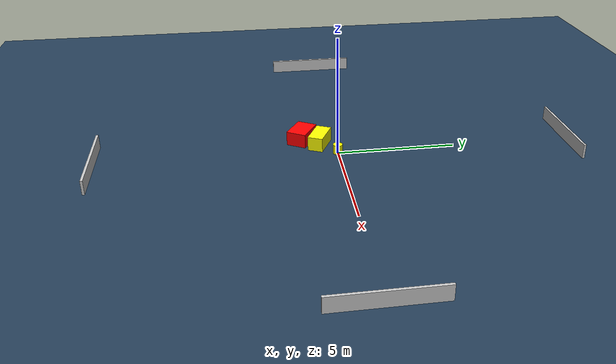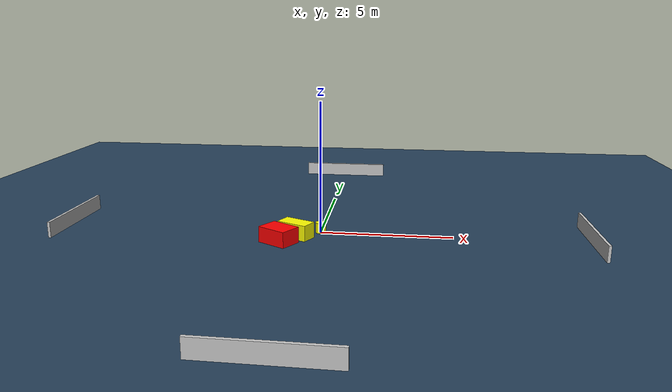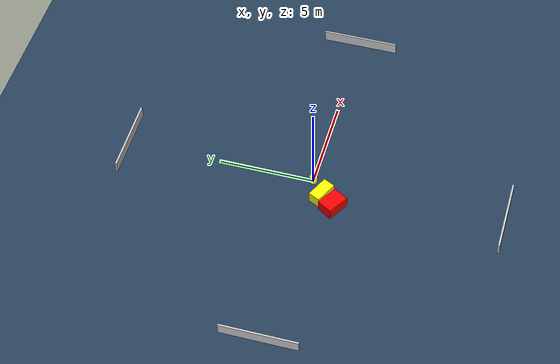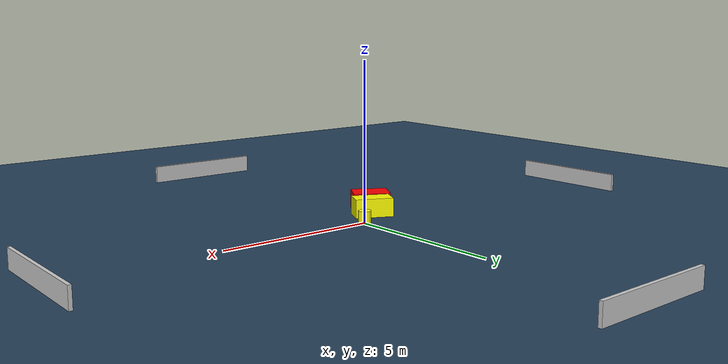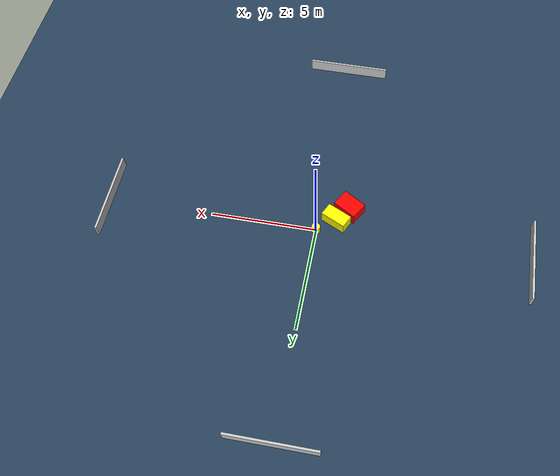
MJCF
<?xml version="1.0" ?>
<mujoco model="generated_environment">
  <option timestep="0.01" integrator="RK4" cone="elliptic"/>
  <default>
    <geom density="1"/>
  </default>
  <asset>
    <texture builtin="gradient" height="3072" name="skybox" rgb1="0.3 0.5 0.7" rgb2="0 0 0" type="skybox" width="512"/>
    <texture builtin="checker" height="300" name="groundplane" rgb1="0.2 0.3 0.4" rgb2="0.1 0.2 0.3" type="2d" width="300"/>
    <material name="groundplane" reflectance="0.2" texrepeat="5 5" texture="groundplane"/>
  </asset>
  <worldbody>
    <light dir="0 0 -1" directional="true" pos="0 0 1.5"/>
    <geom condim="3" friction="0.5 0.005 0.001" material="groundplane" name="floor" pos="0 0 0" size="0 0 0.05" type="plane"/>
    <body name="walls">
      <geom name="wall_1" condim="4" pos="-10.0 0.0 0.3" rgba="0.800000011920929 0.800000011920929 0.800000011920929 1.0" size="0.05 2.0 0.3" type="box"/>
      <geom name="wall_2" condim="4" pos="10.0 0.0 0.3" rgba="0.800000011920929 0.800000011920929 0.800000011920929 1.0" size="0.05 2.0 0.3" type="box"/>
      <geom name="wall_3" condim="4" pos="0.0 -10.0 0.3" rgba="0.800000011920929 0.800000011920929 0.800000011920929 1.0" size="2.0 0.05 0.3" type="box"/>
      <geom name="wall_4" condim="4" pos="0.0 10.0 0.3" rgba="0.800000011920929 0.800000011920929 0.800000011920929 1.0" size="2.0 0.05 0.3" type="box"/>
    </body>
    <body name="robot">
      <joint name="joint_x" type="slide" pos="0 0 0" axis="1 0 0"/>
      <joint name="joint_y" type="slide" pos="0 0 0" axis="0 1 0"/>
      <geom name="robot" type="cylinder" pos="0.0 0.0 0.2" size="0.2 0.2 0.0" mass="5.0" friction="1.0 0.005 0.0001" condim="4" rgba="1.0 1.0 0.0 1.0"/>
    </body>
    <body name="obstacle_1_movable">
      <geom name="obstacle_1_movable" condim="4" pos="-0.8541573954923946 -0.6591178938366568 0.3" euler="0 0 244.71619443658275" friction="0.0 0.005 0.001" rgba="1.0 1.0 0.0 1.0" size="0.32220882209058466 0.6154243409418876 0.3" type="box" mass="0.1"/>
      <joint type="free"/>
    </body>
    <body name="obstacle_2_static">
      <geom name="obstacle_2_static" condim="4" pos="-1.3738220019540999 -1.3698534132807314 0.3" euler="0 0 328.96231683250585" friction="0.0 0.005 0.001" rgba="1.0 0.0 0.0 1.0" size="0.5983008043651954 0.4301071015736966 0.3" type="box"/>
    </body>
  </worldbody>
  <actuator>
    <motor name="actuator_x" joint="joint_x" gear="1" ctrlrange="-1 1"/>
    <motor name="actuator_y" joint="joint_y" gear="1" ctrlrange="-1 1"/>
  </actuator>
</mujoco>
